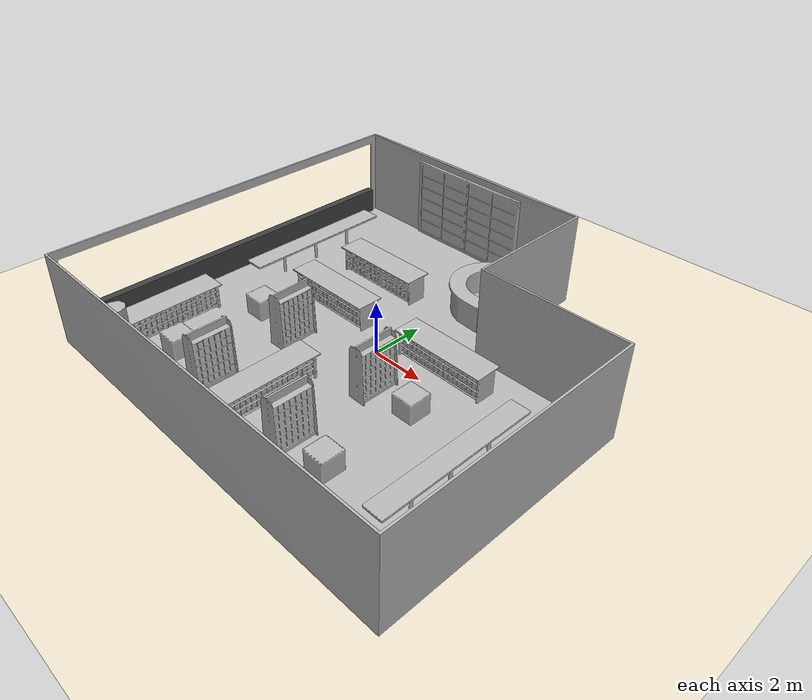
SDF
<?xml version="1.0" ?>

<sdf version="1.8">
  <world name="gazebo_world">
    <physics name='1ms' type='ignored'>
      <max_step_size>0.001</max_step_size>
      <real_time_factor>1.0</real_time_factor>
      <real_time_update_rate>1000</real_time_update_rate>
    </physics>
    <plugin name='gz::sim::systems::Physics' filename='gz-sim-physics-system'/>
    <plugin name='gz::sim::systems::UserCommands' filename='gz-sim-user-commands-system'/>
    <plugin name='gz::sim::systems::SceneBroadcaster' filename='gz-sim-scene-broadcaster-system'/>
    <plugin filename="gz-sim-sensors-system" name="gz::sim::systems::Sensors">
      <render_engine>ogre2</render_engine>
    </plugin>

    <plugin filename="libgz-sim-contact-system.so" name="gz::sim::systems::Contact">
    </plugin>
    <scene>
      <ambient>1.0 1.0 1.0</ambient>
      <background>0.8 0.8 0.8</background>
    </scene>

    <light type="directional" name="sun">
      <cast_shadows>true</cast_shadows>
      <pose>0 0 10 0 0 0</pose>
      <diffuse>0.8 0.8 0.8 1</diffuse>
      <specular>0.2 0.2 0.2 1</specular>
      <attenuation>
        <range>1000</range>
        <constant>0.9</constant>
        <linear>0.01</linear>
        <quadratic>0.001</quadratic>
      </attenuation>
      <direction>-0.5 0.1 -0.9</direction>
    </light>

    <model name="ground_plane">
      <static>true</static>
      <link name="link">
        <collision name="collision">
          <geometry>
            <plane>
              <normal>0 0 1</normal>
              <size>100 100</size>
            </plane>
          </geometry>
        </collision>
        <visual name="visual">
          <geometry>
            <plane>
              <normal>0 0 1</normal>
              <size>100 100</size>
            </plane>
          </geometry>
          <material>
            <ambient>0.94 0.90 0.81 1</ambient>
            <diffuse>0.94 0.90 0.81 1</diffuse>
            <specular>1 1 1 0</specular>
          </material>
        </visual>
      </link>
    </model>

       <model name="BookshelfA_01_001">
        <include>
            <uri>aws_robomaker_retail_BookshelfA_01</uri>
        </include>
        <pose frame="">1.405153 -1.449740 0.03755 0.003490 -0.000003 0.000696</pose>
	</model>

	<model name="BookshelfA_01_002">
        <include>
            <uri>aws_robomaker_retail_BookshelfA_01</uri>
        </include>
        <pose frame="">1.405153 -4.761649 0.003411 0 0 0</pose>
	</model>

	<model name="BookshelfA_01_003">
        <include>
            <uri>aws_robomaker_retail_BookshelfA_01</uri>
        </include>
        <pose frame="">-2.554493 -1.487456 0.006337 0.001313 -0.001987 0.031824</pose>
	</model>

	<model name="BookshelfA_01_004">
        <include>
            <uri>aws_robomaker_retail_BookshelfA_01</uri>
        </include>
        <pose frame="">-2.608578 -4.761649 0.003411 0 0 0</pose>
	</model>

   	<model name="BookshelfC_01_001">
        <include>
            <uri>aws_robomaker_retail_BookshelfC_01</uri>
        </include>
        <pose frame="">2.911133 -1.310229 0.008469 0.003452 -0.000003 0.000620</pose>
	</model>

	<model name="BookshelfC_01_002">
        <include>
            <uri>aws_robomaker_retail_BookshelfC_01</uri>
        </include>
        <pose frame="">2.915449 -4.761712 -0.003455 0.003452 0 0.000014</pose>
	</model>

	<model name="BookshelfC_01_003">
        <include>
            <uri>aws_robomaker_retail_BookshelfC_01</uri>
        </include>
        <pose frame="">-4.517110 -1.310229 0.045908 0 0 0</pose>
	</model>

	<model name="BookshelfC_01_004">
        <include>
            <uri>aws_robomaker_retail_BookshelfC_01</uri>
        </include>
        <pose frame="">-4.614360 -4.761649 0.045908 0 0 0</pose>
	</model>

	<model name="ColumnB_01_002">
        <include>
            <uri>aws_robomaker_retail_ColumnB_01</uri>
        </include>
        <pose frame="">-4.076233 -6.860710 0.017511 0.001895 -0.000628 -0.003755</pose>
	</model>

	<model name="InfoDesk_01_001">
        <include>
         <uri>aws_robomaker_retail_InfoDesk_01</uri>
        </include>
        <pose frame="">0.5 4.8 0.011585 -0.006739 0.005110 -0.025146</pose>
	</model>

	<model name="DeskB_01_001">
        <include>
         <uri>aws_robomaker_retail_DeskB_01</uri>
        </include>
        <pose frame="">5.622942 -2.475419 -0.181282 0 -0 0</pose>
	</model>

	<model name="DeskB_01_002">
        <include>
         <uri>aws_robomaker_retail_DeskB_01</uri>
        </include>
        <pose frame="">-6.25 2.580536 -0.181282 0 -0 0</pose>
	</model>

	<model name="DeskA_01_001">
        <include>
         <uri>aws_robomaker_retail_DeskA_01</uri>
        </include>
        <pose frame="">-3.0 3.200118 0.014921 0.000124 -0.000010 0.000376</pose>
	</model>

	<model name="DeskA_01_002">
        <include>
         <uri>aws_robomaker_retail_DeskA_01</uri>
        </include>
        <pose frame="">-3.0 0.836099 0.00876 -0.000772 -0.001938 0.000017</pose>
	</model>

	<model name="DeskA_01_003">
        <include>
         <uri>aws_robomaker_retail_DeskA_01</uri>
        </include>
        <pose frame="">-6.254654 -3.979197 -0.004603 0.001948 0.001361 -1.569567</pose>
	</model>

	<model name="DeskA_01_004">
        <include>
         <uri>aws_robomaker_retail_DeskA_01</uri>
        </include>
        <pose frame="">-0.701688 -4.049294 0.014866 0.000000 -0.000000 -1.566097</pose>
	</model>

	<model name="DeskA_01_005">
        <include>
         <uri>aws_robomaker_retail_DeskA_01</uri>
        </include>
        <pose frame="">2.298197 0.861754 0.014883 -0.000002 0.003451 0.000024</pose>
	</model>

	<model name="DoorB_01_001">
        <include>
        <uri>aws_robomaker_retail_DoorB_01</uri>
        </include>
        <pose frame="">-2.492457 7.219370 -0.035203 0 -0 0</pose>
	</model>

	<model name="RetailShopFloor_01_001">
        <include>
            <uri>aws_robomaker_retail_RetailShopFloor_01</uri>
        </include>
        <pose frame="">-0.002687 0 -0.276618 -0 0 0</pose>
	</model>

       <model name="RetailShopWall_01_001">
        <include>
            <uri>aws_robomaker_retail_RetailShopWall_01</uri>
        </include>
        <pose frame="">0 0 -0.281282 0 -0 0</pose>
	</model>

  <model name='straight_wall'>
    <pose >-7.8 0 0 0 0 0</pose>
    <link name='Wall_1'>
      <collision name='Wall_1_Collision'>
        <geometry>
          <box>
            <size>0.3 14.0 1.0</size>
          </box>
        </geometry>
        <pose >0 0 0.5 0 -0 0</pose>
        <max_contacts>10</max_contacts>
        <surface>
          <bounce/>
          <friction>
            <ode/>
          </friction>
          <contact>
            <ode/>
          </contact>
        </surface>
      </collision>
      <visual name='Wall_1_Visual'>
        <pose >0 0 0.5 0 -0 0</pose>
        <geometry>
          <box>
            <size>0.3 14.0 1.0</size>
          </box>
        </geometry>
        <material>
          <ambient>0.25 0.25 0.25 1.0</ambient>
          <diffuse>0.25 0.25 0.25 1.0</diffuse>
          <specular>0.1 0.1 0.1 1.0</specular>
          <emissive>0.0 0.0 0.0 1.0</emissive>
        </material>
        <meta>
          <layer>0</layer>
        </meta>
      </visual>
    </link>
  </model>

  </world>
</sdf>

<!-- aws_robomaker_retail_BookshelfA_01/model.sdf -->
<sdf version="1.6">
  <model name="aws_robomaker_retail_BookshelfA_01">
    <link name="link">
      <inertial>
        <mass>50</mass>
        <inertia>
          <ixx>27.734059</ixx>
          <ixy>0</ixy>
          <ixz>0</ixz>
          <iyy>20.9360858</iyy>
          <iyz>0</iyz>
          <izz>11.359616</izz>
        </inertia>
      </inertial>
      <collision name="collision">
        <geometry>
          <mesh>
            <uri>meshes/aws_BookshelfA_01_collision.DAE</uri>
            <scale>1 1 1</scale>
          </mesh>
        </geometry>
      </collision>
      <visual name="visual">
	    <geometry>
          <mesh>
            <uri>meshes/aws_BookshelfA_01_visual.DAE</uri>
          </mesh>
        </geometry>
        <meta>
          <layer>1</layer>
        </meta>
      </visual>
    </link>
  <static>1</static>
  </model>
</sdf>

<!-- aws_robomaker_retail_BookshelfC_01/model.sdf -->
<sdf version="1.6">
  <model name="aws_robomaker_retail_BookshelfC_01">
    <link name="link">
      <inertial>
        <mass>50</mass>
        <inertia>
          <ixx>5.586498</ixx>
          <ixy>0</ixy>
          <ixz>0</ixz>
          <iyy>5.4732378</iyy>
          <iyz>0</iyz>
          <izz>6.232767</izz>
        </inertia>
      </inertial>
      <collision name="collision">
        <geometry>
          <mesh>
            <uri>meshes/aws_BookshelfC_01_collision.DAE</uri>
            <scale>1 1 1</scale>
          </mesh>
        </geometry>
      </collision>
      <visual name="visual">
	    <geometry>
          <mesh>
            <uri>meshes/aws_BookshelfC_01_visual.DAE</uri>
          </mesh>
        </geometry>
        <meta>
          <layer>1</layer>
        </meta>
      </visual>
    </link>
  <static>1</static>
  </model>
</sdf>

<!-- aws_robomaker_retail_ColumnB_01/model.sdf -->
<sdf version="1.6">
  <model name="aws_robomaker_retail_ColumnB_01">
    <link name="link">
      <inertial>
        <mass>50</mass>
        <inertia>
          <ixx>44.5597233</ixx>
          <ixy>0</ixy>
          <ixz>0</ixz>
          <iyy>44.5597233</iyy>
          <iyz>0</iyz>
          <izz>1.8794166</izz>
        </inertia>
      </inertial>
      <collision name="collision">
        <geometry>
          <mesh>
            <uri>meshes/aws_ColumnB_01_collision.DAE</uri>
            <scale>1 1 1</scale>
          </mesh>
        </geometry>
      </collision>
      <visual name="visual">
	    <geometry>
          <mesh>
            <uri>meshes/aws_ColumnB_01_visual.DAE</uri>
          </mesh>
        </geometry>
        <meta>
          <layer>1</layer>
        </meta>
      </visual>
    </link>
      <static>1</static>
  </model>
</sdf>

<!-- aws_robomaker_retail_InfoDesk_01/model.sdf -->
<sdf version="1.6">
  <model name="aws_robomaker_retail_InfoDesk_01">
    <link name="link">
      <inertial>
        <mass>50</mass>
        <inertia>
          <ixx>47.838601</ixx>
          <ixy>0</ixy>
          <ixz>0</ixz>
          <iyy>25.37052</iyy>
          <iyz>0</iyz>
          <izz>63.5798181</izz>
        </inertia>
      </inertial>
      <collision name="collision">
        <geometry>
          <mesh>
            <uri>meshes/aws_InfoDesk_01_collision.DAE</uri>
            <scale>1 1 1</scale>
          </mesh>
        </geometry>
      </collision>
      <visual name="visual">
	    <geometry>
          <mesh>
            <uri>meshes/aws_InfoDesk_01_visual.DAE</uri>
          </mesh>
        </geometry>
        <meta>
          <layer>1</layer>
        </meta>
      </visual>
    </link>
		<static>1</static>
  </model>
</sdf>

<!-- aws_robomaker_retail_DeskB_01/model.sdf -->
<sdf version="1.6">
  <model name="aws_robomaker_retail_DeskB_01">
    <link name="link">
      <inertial>
        <mass>50</mass>
        <inertia>
          <ixx>154.88378004</ixx>
          <ixy>0</ixy>
          <ixz>0</ixz>
          <iyy>7.484241145</iyy>
          <iyz>0</iyz>
          <izz>152.098671</izz>
        </inertia>
      </inertial>
      <collision name="collision">
        <geometry>
          <mesh>
            <uri>meshes/aws_DeskB_01_collision.DAE</uri>
            <scale>1 1 1</scale>
          </mesh>
        </geometry>
      </collision>
      <visual name="visual">
	    <geometry>
          <mesh>
            <uri>meshes/aws_DeskB_01_visual.DAE</uri>
          </mesh>
        </geometry>
        <meta>
          <layer>1</layer>
        </meta>
      </visual>
    </link>
    <static>1</static>
  </model>
</sdf>

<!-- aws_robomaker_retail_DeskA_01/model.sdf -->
<sdf version="1.6">
  <model name="aws_robomaker_retail_DeskA_01">
    <link name="link">
      <inertial>
        <mass>20</mass>
        <inertia>
          <ixx>3.49717266</ixx>
          <ixy>0</ixy>
          <ixz>0</ixz>
          <iyy>23.5598501</iyy>
          <iyz>0</iyz>
          <izz>23.570161273</izz>
        </inertia>
      </inertial>
      <collision name="collision">
        <geometry>
          <mesh>
            <uri>meshes/aws_DeskA_01_collision.DAE</uri>
            <scale>1 1 1</scale>
          </mesh>
        </geometry>
      </collision>
      <visual name="visual">
	    <geometry>
          <mesh>
            <uri>meshes/aws_DeskA_01_visual.DAE</uri>
          </mesh>
        </geometry>
        <meta>
          <layer>1</layer>
        </meta>
      </visual>
    </link>
	<static>1</static>
  </model>
</sdf>

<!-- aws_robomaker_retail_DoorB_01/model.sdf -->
<sdf version="1.6">
  <model name="aws_robomaker_retail_DoorB_01">
    <link name="link">
      <inertial>
        <mass>50</mass>
        <inertia>
          <ixx>44.5597233</ixx>
          <ixy>0</ixy>
          <ixz>0</ixz>
          <iyy>151.69886</iyy>
          <iyz>0</iyz>
          <izz>107.805719</izz>
        </inertia>
      </inertial>
      <collision name="collision">
        <geometry>
          <mesh>
            <uri>meshes/aws_DoorB_01_collision.DAE</uri>
            <scale>1 1 1</scale>
          </mesh>
        </geometry>
      </collision>
      <visual name="visual">
	    <geometry>
          <mesh>
            <uri>meshes/aws_DoorB_01_visual.DAE</uri>
          </mesh>
        </geometry>
        <meta>
          <layer>2</layer>
        </meta>
      </visual>
    </link>
  <static>1</static>
  </model>
</sdf>

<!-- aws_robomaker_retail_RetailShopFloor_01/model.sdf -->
<sdf version="1.6">
  <model name="aws_robomaker_retail_RetailShopFloor_01">
    <link name="link">
      <inertial>
        <mass>100</mass>
      </inertial>
      <collision name="collision">
        <geometry>
          <mesh>
            <uri>meshes/aws_RetailShopFloor_01_collision.DAE</uri>
            <scale>1 1 1</scale>
          </mesh>
        </geometry>
        <surface>
          <friction>
            <ode>
              <mu>100</mu>
              <mu2>50</mu2>
            </ode>
          </friction>
        </surface>
      </collision>
      <visual name="visual">
	    <geometry>
          <mesh>
            <uri>meshes/aws_RetailShopFloor_01_visual.DAE</uri>
          </mesh>
        </geometry>
        <meta>
          <layer>1</layer>
        </meta>
      </visual>
	</link>
	<static>1</static>
  </model>
</sdf>

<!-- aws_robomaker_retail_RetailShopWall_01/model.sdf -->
<sdf version="1.6">
  <model name="aws_robomaker_retail_RetailShopWall_01">
    <link name="link">
      <inertial>
        <mass>1</mass>
      </inertial>
      <collision name="collision">
        <geometry>
          <mesh>
            <uri>meshes/aws_RetailShopWall_01_collision.DAE</uri>
            <scale>1 1 1</scale>
          </mesh>
        </geometry>
      </collision>
      <visual name="visual">
	    <geometry>
          <mesh>
            <uri>meshes/aws_RetailShopWall_01_visual.DAE</uri>
          </mesh>
        </geometry>
        <meta>
          <layer>2</layer>
        </meta>
      </visual>
    </link>
	<static>1</static>
  </model>
</sdf>
